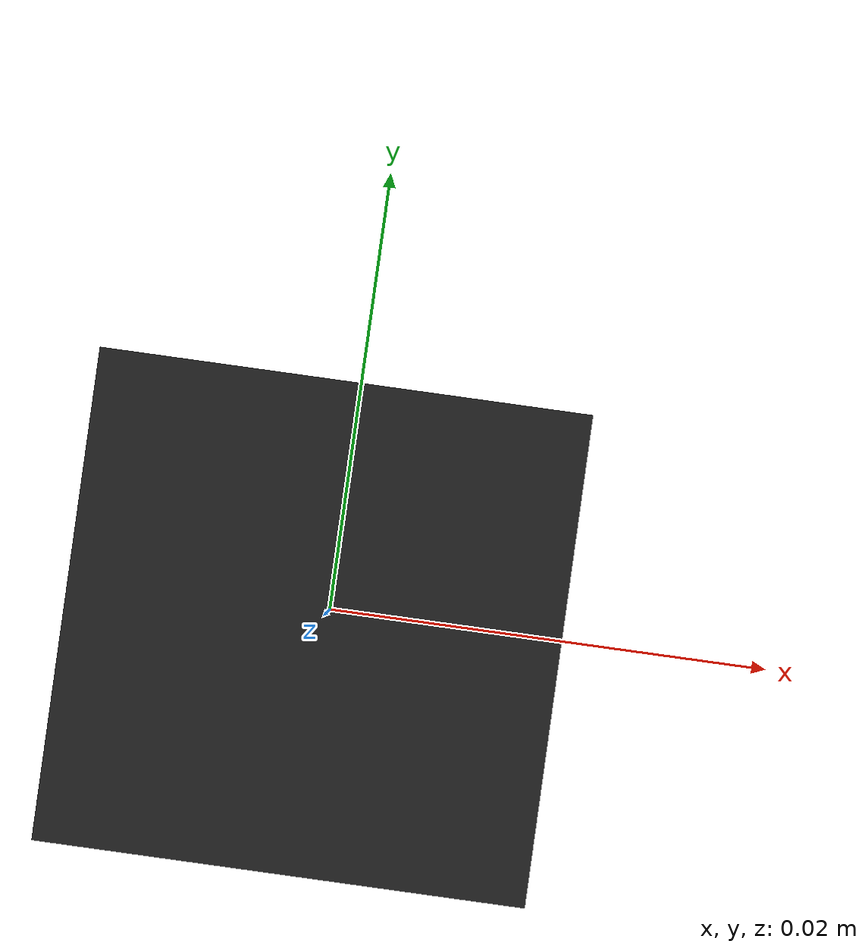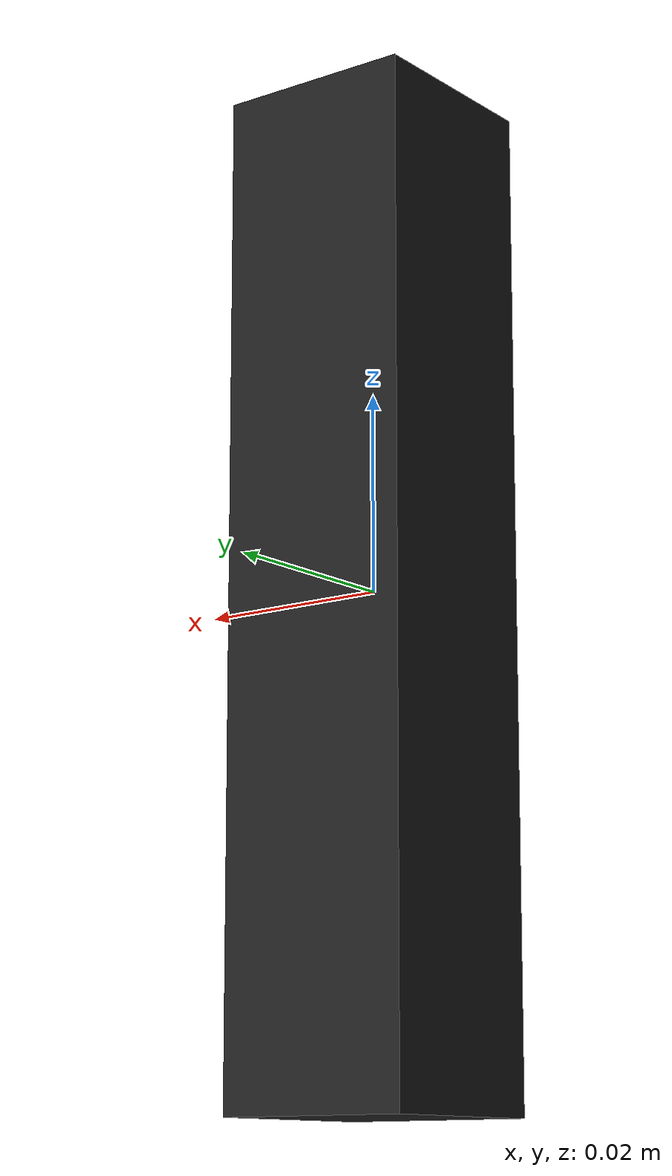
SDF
<?xml version="1.0"?>

<sdf version="1.4">
    <model name="imu">
        <static>false</static>
        <pose>0 0 0 0 0 0</pose> <!-- dimensions are measured from the center of the model-->

        <link name="payload">
            <pose>0 0 0 0 0 0</pose>
            <inertial>
                <pose>0 0 0 0 0 0</pose><!-- at the center of the block-->
                <inertia>
                    <!-- values for mass = 10 -->
                    <ixx>0.0333</ixx>
                    <ixy>0</ixy>
                    <ixz>0</ixz>
                    <iyy>0.0333</iyy>
                    <iyz>0</iyz>
                    <izz>0.0067</izz>
                </inertia>
                <mass>1.0</mass>
            </inertial>
            <collision name="payload_collision">
                <geometry>
                    <box>
                        <size>0.02 0.02 0.1</size>
                    </box>
                </geometry>
            </collision>
            <visual name="payload_visual">
                <geometry>
                    <box>
                        <size>0.02 0.02 0.1</size>
                    </box>
                </geometry>
                <material>
                    <script>
                        <uri>file://media/materials/scripts/gazebo.material</uri>
                        <name>Gazebo/Black</name>
                    </script>
                </material>
            </visual>
        </link>
        <link name="imu">
            <pose>0.0 0.0 0 0 0 0</pose>
            <inertial>
                <inertia>
                    <!-- assign some small values for the physics engine to evaluate, change them later on -->
                    <ixx>0.001</ixx>
                    <ixy>0</ixy>
                    <ixz>0</ixz>
                    <iyy>0.001</iyy>
                    <iyz>0</iyz>
                    <izz>0.001</izz>
                </inertia>
                <mass>0.05</mass>
            </inertial>
            <collision name="imu_collision">
                <geometry>
                    <box>
                        <size>0.01 0.01 0.01</size>
                    </box>
                </geometry>
            </collision>
            <visual name="imu_visual">
                <geometry>
                    <box>
                        <size>0.01 0.01 0.01</size>
                    </box>
                </geometry>
                <material>
                    <script>
                        <uri>file://media/materials/scripts/gazebo.material</uri>
                        <name>Gazebo/White</name>
                    </script>
                </material>
            </visual>
        </link>

        <joint name="imu_mount" type="revolute">
            <pose>0 0 0 0 0 0</pose>
            <child>imu</child>
            <parent>payload</parent>
            <axis>
                <limit>
                    <lower>0</lower>
                    <upper>0</upper>
                </limit>
                <xyz>0 0 1</xyz>
            </axis>
        </joint>

    </model>
</sdf>
